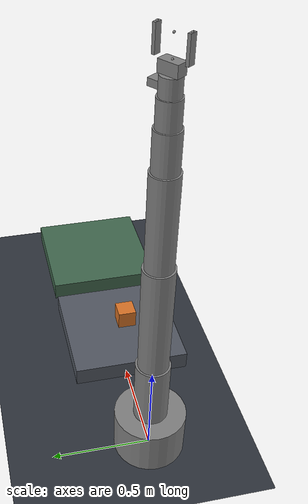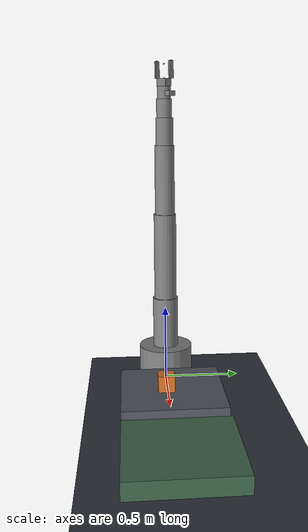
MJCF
<mujoco model="benchmark-world">
  <compiler angle="radian"/>

  <option tolerance="1e-10" integrator="implicitfast" jacobian="dense"/>

  <visual>
    <headlight ambient="0 0 0" diffuse="0 0 0" specular="0 0 0"/>
  </visual>

  <statistic extent="12.3" center="0 0 0"/>

  <default>
    <default class="robot/main"/>
  </default>

  <worldbody>
    <geom name="world/floor" size="12.3 12.3 0.1" type="plane" rgba="0.18 0.2 0.23 1"/>
    <camera name="world/camera" pos="7.38 -10.25 7.38" quat="0.803956 0.50933 0.164287 0.259321" fovy="50"/>
    <light name="world/key" pos="0 -4.1 12.3" dir="0 0 -1" type="directional" ambient="0.3 0.3 0.3" diffuse="0.8 0.8 0.8" specular="0.1 0.1 0.1"/>
    <body name="world/bench" pos="0.6765 0 0.1558">
      <geom name="world/bench_geom" size="0.3075 0.3075 0.0492" type="box" condim="4" priority="1" friction="1 0.03 0.001" solref="0.004" solimp="0.95 0.99" rgba="0.32 0.34 0.38 1"/>
    </body>
    <body name="world/cube" pos="0.698962 -0.037755 0.2542">
      <joint name="world/cube_free" type="free"/>
      <geom name="world/cube_geom" size="0.0492 0.0492 0.0492" type="box" condim="4" priority="1" friction="1.57543 0.03 0.001" solref="0.004" solimp="0.95 0.99" mass="1.00066" rgba="0.85 0.45 0.15 1"/>
    </body>
    <body name="world/destination" pos="1.394 0 0.1558">
      <geom name="world/destination_geom" size="0.3075 0.3075 0.0492" type="box" condim="4" priority="1" friction="1 0.03 0.001" solref="0.004" solimp="0.95 0.99" rgba="0.25 0.4 0.3 1"/>
    </body>
    <body name="robot/base">
      <inertial pos="0 0 0.12" quat="0.5 0.5 -0.5 0.5" mass="26" diaginertia="0.4212 0.3354 0.3354"/>
      <geom size="0.18 0.12" pos="0 0 0.12" type="cylinder"/>
      <site name="robot/robot_base" pos="0 0 0"/>
      <body name="robot/link_0" pos="0 0 0.24" quat="0.953717 0 0 0.300706">
        <inertial pos="0 0 0.17" mass="6.94559" diaginertia="0.0794547 0.0794547 0.0250909"/>
        <joint name="robot/joint_0" pos="0 0 0" axis="0 0 1" range="-2.85 2.85" actuatorfrcrange="-420 420"/>
        <geom size="0.085 0.17" pos="0 0 0.17" type="cylinder"/>
        <body name="robot/link_1" pos="0 0 0.34">
          <inertial pos="0 0 0.29" mass="9.17537" diaginertia="0.27005 0.27005 0.0256683"/>
          <joint name="robot/joint_1" pos="0 0 0" axis="0 1 0" range="-2.85 2.85" actuatorfrcrange="-420 420"/>
          <geom size="0.0748 0.29" pos="0 0 0.29" type="cylinder"/>
          <body name="robot/link_2" pos="0 0 0.58">
            <inertial pos="0 0 0.23" mass="5.63532" diaginertia="0.105474 0.105474 0.0122084"/>
            <joint name="robot/joint_2" pos="0 0 0" axis="0 1 0" range="-2.85 2.85" actuatorfrcrange="-420 420"/>
            <geom size="0.065824 0.23" pos="0 0 0.23" type="cylinder"/>
            <body name="robot/link_3" pos="0 0 0.46">
              <inertial pos="0 0 0.09" mass="1.70765" diaginertia="0.00604308 0.00604308 0.00286486"/>
              <joint name="robot/joint_3" pos="0 0 0" axis="1 0 0" range="-2.85 2.85" actuatorfrcrange="-420 420"/>
              <geom size="0.057925 0.09" pos="0 0 0.09" type="cylinder"/>
              <body name="robot/link_4" pos="0 0 0.18">
                <inertial pos="0 0 0.06" mass="0.881603" diaginertia="0.0016306 0.0016306 0.00114536"/>
                <joint name="robot/joint_4" pos="0 0 0" axis="0 1 0" range="-2.85 2.85" actuatorfrcrange="-420 420"/>
                <geom size="0.050974 0.06" pos="0 0 0.06" type="cylinder"/>
                <body name="robot/link_5" pos="0 0 0.12">
                  <inertial pos="0 0 0.04" mass="0.455142" diaginertia="0.0004717 0.0004717 0.00045791"/>
                  <joint name="robot/joint_5" pos="0 0 0" axis="0 0 1" range="-2.85 2.85" actuatorfrcrange="-420 420"/>
                  <geom size="0.044857 0.04" pos="0 0 0.04" type="cylinder"/>
                  <body name="robot/wrist_camera" pos="0.06 0 0.02">
                    <inertial pos="0 0 0.015" quat="0.5 0.5 -0.5 0.5" mass="0.2" diaginertia="8.333e-05 5.667e-05 5.667e-05"/>
                    <geom size="0.025 0.025 0.015" pos="0 0 0.015" type="box"/>
                    <site name="robot/link_5_gaze" pos="0 0 0"/>
                  </body>
                  <body name="robot/palm" pos="0 0 0.08">
                    <inertial pos="0 0 0.025" quat="0.5 0.5 0.5 0.5" mass="0.35" diaginertia="0.00030917 0.00030917 0.00014583"/>
                    <geom size="0.045 0.025 0.025" pos="0 0 0.025" type="box"/>
                    <site name="robot/palm_grasp_point" pos="0 0 0.1415"/>
                    <site name="robot/palm_grasp_center" pos="0 0 0.05"/>
                    <site name="robot/palm_wrist" pos="0 0 0"/>
                    <body name="robot/finger_left" pos="0.073 0 0.05">
                      <inertial pos="0 0 0.055" mass="0.06" diaginertia="6.5e-05 6.148e-05 5.48e-06"/>
                      <joint name="robot/grip_left" pos="0 0 0" axis="-1 0 0" type="slide" range="0 0.065" actuatorfrcrange="-110 110"/>
                      <geom size="0.007 0.015 0.055" pos="0 0 0.055" type="box"/>
                      <site name="robot/palm_tip" pos="0 0 0.11"/>
                      <site name="robot/palm_contact_0" pos="0 0 0.11"/>
                    </body>
                    <body name="robot/finger_right" pos="-0.073 0 0.05">
                      <inertial pos="0 0 0.055" mass="0.06" diaginertia="6.5e-05 6.148e-05 5.48e-06"/>
                      <joint name="robot/grip_right" pos="0 0 0" axis="1 0 0" type="slide" range="0 0.065" actuatorfrcrange="-110 110"/>
                      <geom size="0.007 0.015 0.055" pos="0 0 0.055" type="box"/>
                      <site name="robot/palm_contact_1" pos="0 0 0.11"/>
                    </body>
                  </body>
                </body>
              </body>
            </body>
          </body>
        </body>
      </body>
    </body>
  </worldbody>

  <actuator>
    <general name="robot/joint_0_motor" joint="robot/joint_0" ctrllimited="true" ctrlrange="-420 420" forcelimited="true" forcerange="-420 420"/>
    <general name="robot/joint_1_motor" joint="robot/joint_1" ctrllimited="true" ctrlrange="-420 420" forcelimited="true" forcerange="-420 420"/>
    <general name="robot/joint_2_motor" joint="robot/joint_2" ctrllimited="true" ctrlrange="-420 420" forcelimited="true" forcerange="-420 420"/>
    <general name="robot/joint_3_motor" joint="robot/joint_3" ctrllimited="true" ctrlrange="-420 420" forcelimited="true" forcerange="-420 420"/>
    <general name="robot/joint_4_motor" joint="robot/joint_4" ctrllimited="true" ctrlrange="-420 420" forcelimited="true" forcerange="-420 420"/>
    <general name="robot/joint_5_motor" joint="robot/joint_5" ctrllimited="true" ctrlrange="-420 420" forcelimited="true" forcerange="-420 420"/>
    <general name="robot/grip_left_motor" joint="robot/grip_left" ctrllimited="true" ctrlrange="-110 110" forcelimited="true" forcerange="-110 110"/>
    <general name="robot/grip_right_motor" joint="robot/grip_right" ctrllimited="true" ctrlrange="-110 110" forcelimited="true" forcerange="-110 110"/>
  </actuator>
</mujoco>
